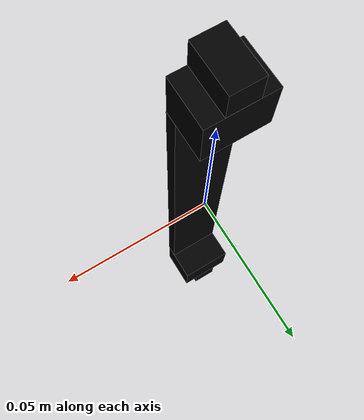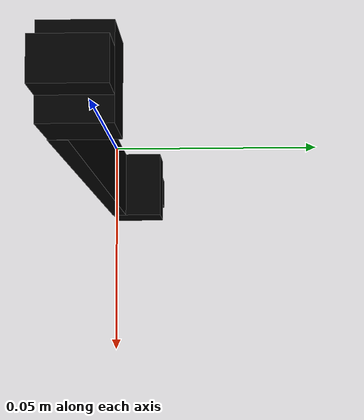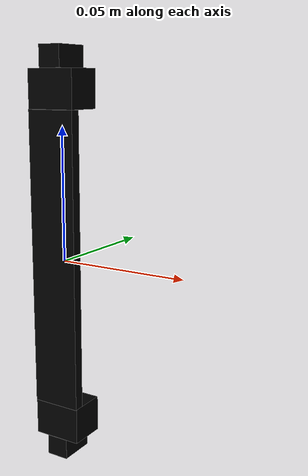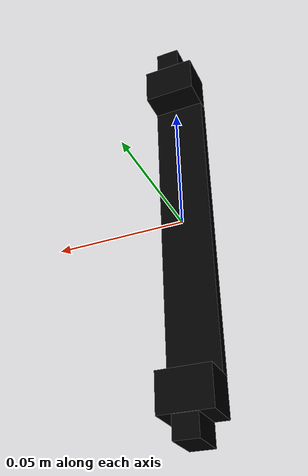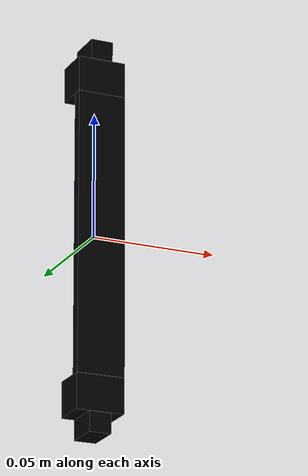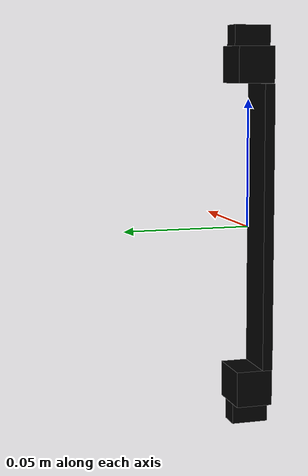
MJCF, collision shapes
<?xml version="1.0" ?>
<mujoco model="model">
    <compiler angle="radian"/>
    <asset>
        <mesh file="visuals/CabinetHandle037.obj" name="mesh"/>
        <texture file="visuals/T_BC001.png" name="tex" type="2d"/>
        <material name="mat" rgba="1 1 1 1.0" texture="tex" shininess="1" specular="1"/>
    </asset>
    <default>
        <default class="visual">
            <geom conaffinity="0" contype="0" group="1" type="mesh"/>
        </default>
        <default class="collision">
            <geom group="0" rgba="0 0 0 0"/>
        </default>
        <default class="spawn">
            <geom group="0" rgba="0 0 0 0" contype="0" conaffinity="0"/>
            <site group="0" rgba="0 0 0 0"/>
        </default>
    </default>
    <worldbody>
        <body>
            <body name="object">
                <geom mesh="mesh" type="mesh" solimp="0.998 0.998 0.001" solref="0.001 1" density="100" friction="0.95 0.3 0.1" class="visual" material="mat"/>
                <geom class="collision" type="box" pos="-2.9777684176224284e-05 -0.005289355292916298 -3.8582518754992634e-05" size="0.009496493265032768 0.0020103617571294308 0.056146491318941116" quat="1.0 0.0 0.0 0.0"/>
                <geom class="collision" type="box" pos="-2.9777684176224284e-05 0.00010454880248289555 0.06326448917388916" size="0.009496493265032768 0.0071960752829909325 0.007047103252261877" quat="1.0 0.0 0.0 0.0" name="handle_connector"/>
                <geom class="collision" type="box" pos="-3.179679697495885e-05 0.00010454880248289555 0.07436482608318329" size="0.004367112647742033 0.0071960752829909325 0.003963024355471134" quat="1.0 0.0 0.0 0.0"/>
                <geom class="collision" type="box" pos="-3.179679697495885e-05 0.00010454880248289555 -0.0742318406701088" size="0.004367112647742033 0.0071960752829909325 0.003963024355471134" quat="1.0 0.0 0.0 0.0"/>
                <geom class="collision" type="box" pos="-2.9777684176224284e-05 0.00010454880248289555 -0.06313150376081467" size="0.009496493265032768 0.0071960752829909325 0.007047103252261877" quat="1.0 0.0 0.0 0.0"/>
            </body>
        </body>
    </worldbody>
    <actuator/>
</mujoco>
